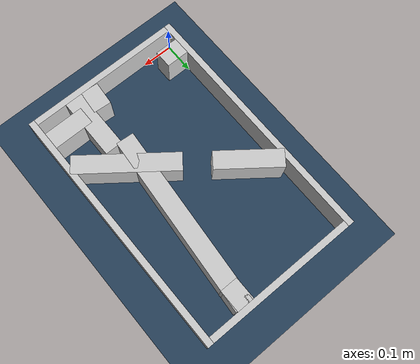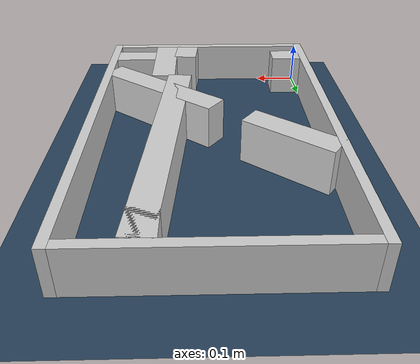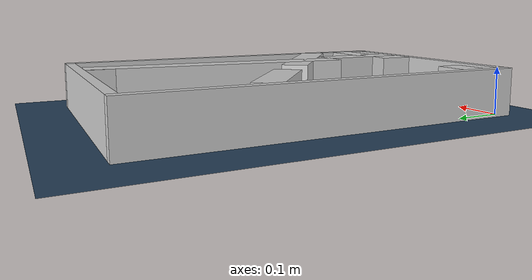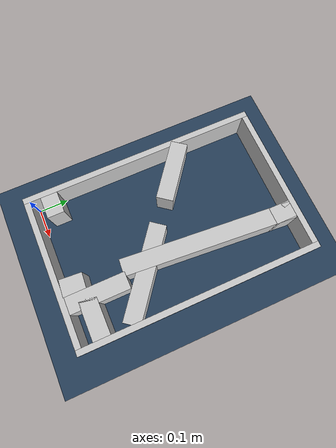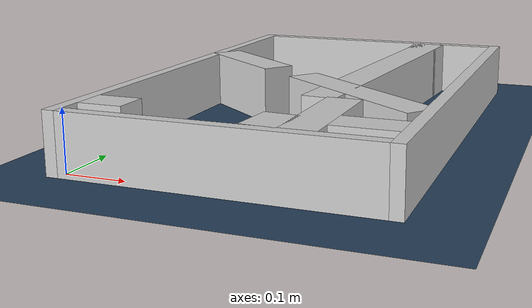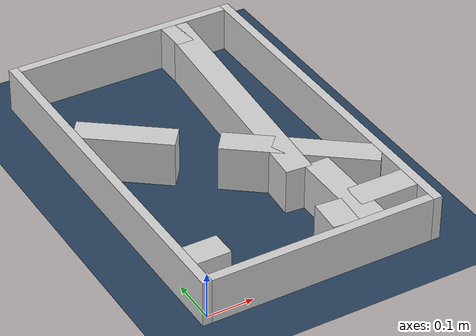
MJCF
<?xml version="1.0" ?>
<mujoco model="generated_real_template">
  <compiler angle="degree"/>
  <option timestep="0.002" integrator="implicitfast" iterations="100" cone="elliptic"/>
  <default>
    <geom density="1"/>
  </default>
  <asset>
    <texture builtin="gradient" height="3072" rgb1="0.3 0.5 0.7" rgb2="0 0 0" type="skybox" width="512"/>
    <texture builtin="checker" height="300" mark="edge" markrgb="0.8 0.8 0.8" name="groundplane" rgb1="0.2 0.3 0.4" rgb2="0.1 0.2 0.3" type="2d" width="300"/>
    <material name="groundplane" reflectance="0.2" texrepeat="5 5" texture="groundplane" texuniform="true"/>
  </asset>
  <worldbody>
    <light dir="0 0 -1" directional="true" pos="0 0 1.5"/>
    <geom name="floor" type="plane" condim="4" friction="0.5 0.005 0.001" material="groundplane" size="0 0 0.05"/>
    <body name="walls">
      <geom name="wall_boundary_left" type="box" condim="4" friction="1.0 0.005 0.0001" rgba="0.8 0.8 0.8 1" pos="-0.010000 0.387500 0.050000" euler="0 0 0.000000" size="0.010000 0.407500 0.050000"/>
      <geom name="wall_boundary_right" type="box" condim="4" friction="1.0 0.005 0.0001" rgba="0.8 0.8 0.8 1" pos="0.500000 0.387500 0.050000" euler="0 0 0.000000" size="0.010000 0.407500 0.050000"/>
      <geom name="wall_boundary_bottom" type="box" condim="4" friction="1.0 0.005 0.0001" rgba="0.8 0.8 0.8 1" pos="0.245000 -0.010000 0.050000" euler="0 0 0.000000" size="0.245000 0.010000 0.050000"/>
      <geom name="wall_boundary_top" type="box" condim="4" friction="1.0 0.005 0.0001" rgba="0.8 0.8 0.8 1" pos="0.245000 0.785000 0.050000" euler="0 0 0.000000" size="0.245000 0.010000 0.050000"/>
      <geom name="wall_inner_1_1" type="box" condim="4" friction="1.0 0.005 0.0001" rgba="0.8 0.8 0.8 1" pos="0.361278 0.099161 0.050000" euler="0 0 90.000000" size="0.099161 0.028500 0.050000"/>
      <geom name="wall_inner_1_2" type="box" condim="4" friction="1.0 0.005 0.0001" rgba="0.8 0.8 0.8 1" pos="0.361278 0.739336 0.050000" euler="0 0 90.000000" size="0.035664 0.028500 0.050000"/>
      <geom name="wall_inner_2_1" type="box" condim="4" friction="1.0 0.005 0.0001" rgba="0.8 0.8 0.8 1" pos="0.361955 0.256525 0.050000" euler="0 0 142.495347" size="0.161407 0.028500 0.050000"/>
      <geom name="wall_inner_2_2" type="box" condim="4" friction="1.0 0.005 0.0001" rgba="0.8 0.8 0.8 1" pos="0.083018 0.470597 0.050000" euler="0 0 142.495347" size="0.104648 0.028500 0.050000"/>
      <geom name="wall_inner_3_1" type="box" condim="4" friction="1.0 0.005 0.0001" rgba="0.8 0.8 0.8 1" pos="0.037050 0.064117 0.050000" euler="0 0 0.000000" size="0.037050 0.028500 0.050000"/>
      <geom name="wall_inner_3_2" type="box" condim="4" friction="1.0 0.005 0.0001" rgba="0.8 0.8 0.8 1" pos="0.425933 0.064117 0.050000" euler="0 0 0.000000" size="0.064067 0.028500 0.050000"/>
      <geom name="wall_inner_4_1" type="box" condim="4" friction="1.0 0.005 0.0001" rgba="0.8 0.8 0.8 1" pos="0.307218 0.037454 0.050000" euler="0 0 85.435182" size="0.037573 0.028500 0.050000"/>
      <geom name="wall_inner_4_2" type="box" condim="4" friction="1.0 0.005 0.0001" rgba="0.8 0.8 0.8 1" pos="0.342901 0.484391 0.050000" euler="0 0 85.435182" size="0.291534 0.028500 0.050000"/>
    </body>
  </worldbody>
</mujoco>
